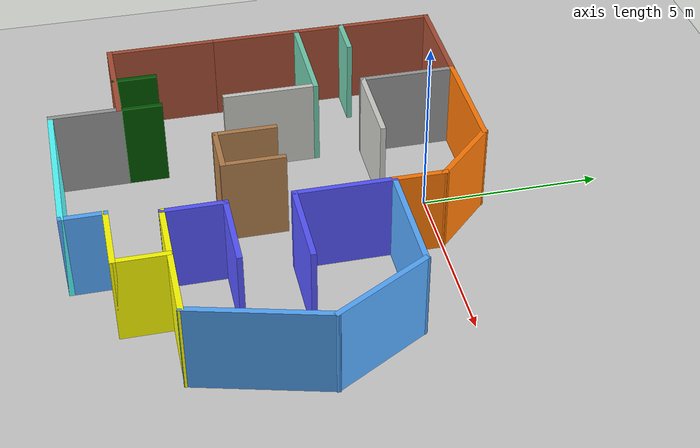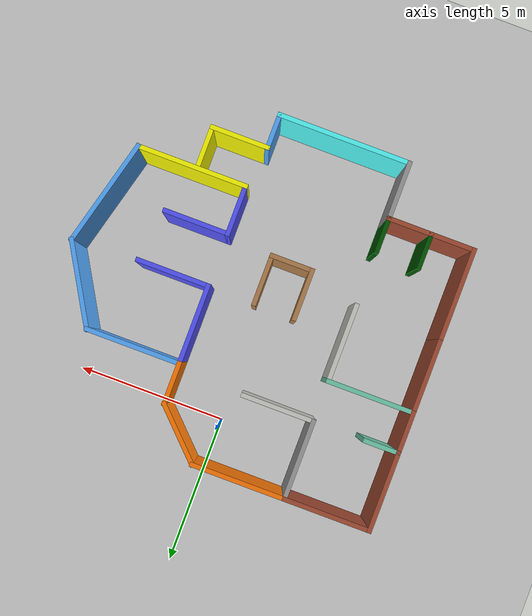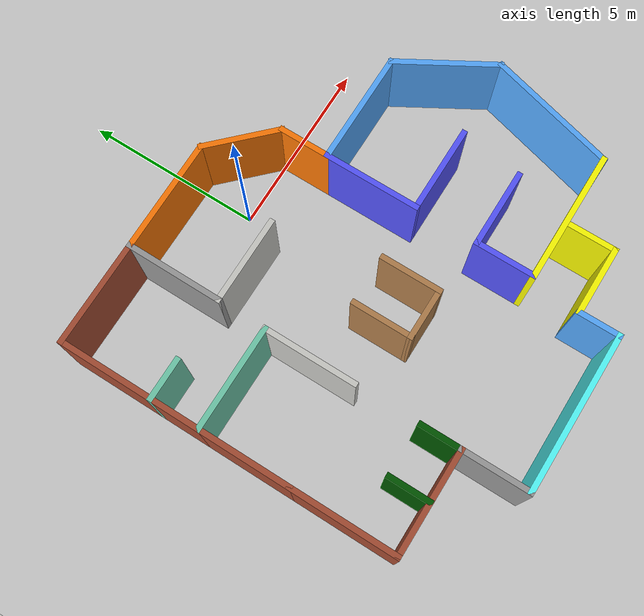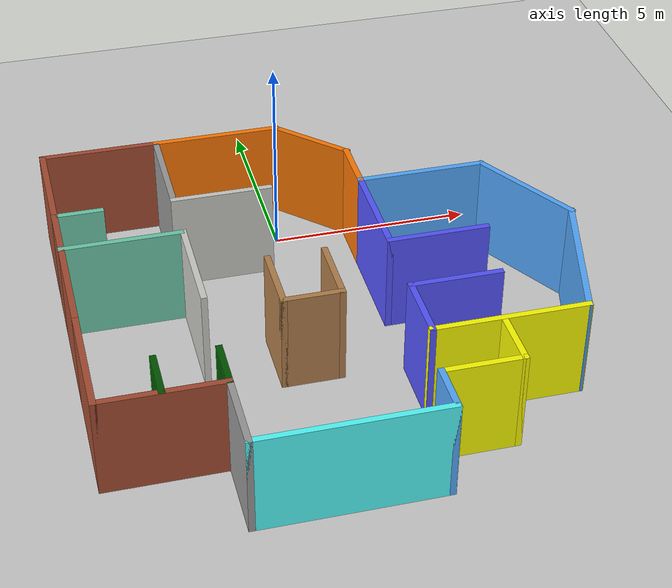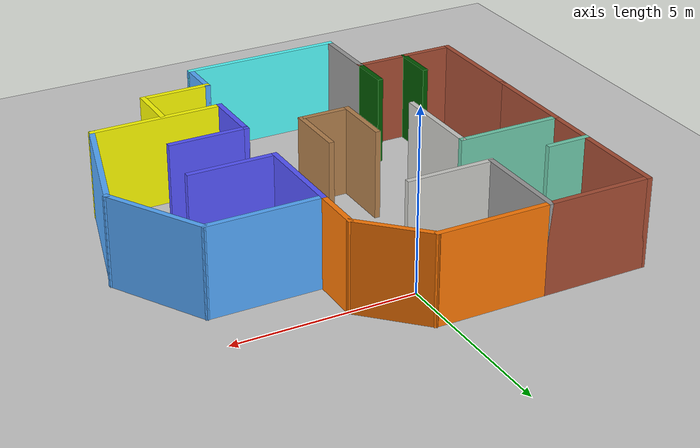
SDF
<sdf version="1.6">
 <world name="default">
  <light name="sun" type="directional">
   <pose>0 0 10 0 -0 0</pose>
   <diffuse>0.8 0.8 0.8 1</diffuse>
   <specular>0.1 0.1 0.1 1</specular>
   <attenuation>
    <range>1000</range>
    <constant>0.9</constant>
    <linear>0.01</linear>
    <quadratic>0.001</quadratic>
   </attenuation>
   <direction>-0.5 0.5 -1</direction>
  </light>
  <model name="ground_plane">
   <static>1</static>
   <link name="link">
    <collision name="collision">
     <geometry><plane><normal>0 0 1</normal><size>100 100</size></plane></geometry>
     <surface><friction><ode><mu>100</mu><mu2>50</mu2></ode></friction></surface>
    </collision>
    <visual name="visual">
     <cast_shadows>0</cast_shadows>
     <geometry><plane><normal>0 0 1</normal><size>100 100</size></plane></geometry>
     <material>
      <script><uri>file://media/materials/scripts/gazebo.material</uri><name>Gazebo/Grey</name></script>
     </material>
    </visual>
   </link>
  </model>
  <gravity>0 0 -9.8</gravity>
  <magnetic_field>6e-06 2.3e-05 -4.2e-05</magnetic_field>
  <atmosphere type="adiabatic"/>
  <physics name="default_physics" default="0" type="ode">
   <max_step_size>0.001</max_step_size>
   <real_time_factor>1</real_time_factor>
   <real_time_update_rate>1000</real_time_update_rate>
  </physics>
  <scene><ambient>0.4 0.4 0.4 1</ambient><background>0.7 0.7 0.7 1</background><shadows>1</shadows></scene>
  <spherical_coordinates>
   <surface_model>EARTH_WGS84</surface_model>
   <latitude_deg>0</latitude_deg>
   <longitude_deg>0</longitude_deg>
   <elevation>0</elevation>
   <heading_deg>0</heading_deg>
  </spherical_coordinates>
  <model name="building4">
   <pose>0.392053 -4.12828 0 0 -0 0</pose>
   <link name="Wall_12">
    <collision name="Wall_12_Collision">
     <geometry><box><size>2.75 0.15 2.5</size></box></geometry>
     <pose>0 0 1.25 0 -0 0</pose>
    </collision>
    <visual name="Wall_12_Visual">
     <pose>0 0 1.25 0 -0 0</pose>
     <geometry><box><size>2.75 0.15 2.5</size></box></geometry>
     <material>
      <script><uri>file://media/materials/scripts/gazebo.material</uri><name>Gazebo/Bricks</name></script>
      <ambient>1 1 1 1</ambient>
     </material>
    </visual>
    <pose>-5.99369 4.30947 0 0 -0 1.5708</pose>
   </link>
   <link name="Wall_13">
    <collision name="Wall_13_Collision">
     <geometry><box><size>3 0.15 2.5</size></box></geometry>
     <pose>0 0 1.25 0 -0 0</pose>
    </collision>
    <visual name="Wall_13_Visual">
     <pose>0 0 1.25 0 -0 0</pose>
     <geometry><box><size>3 0.15 2.5</size></box></geometry>
     <material>
      <script><uri>file://media/materials/scripts/gazebo.material</uri><name>Gazebo/Bricks</name></script>
      <ambient>1 1 1 1</ambient>
     </material>
    </visual>
    <pose>-4.56869 5.60947 0 0 -0 0</pose>
   </link>
   <link name="Wall_14">
    <collision name="Wall_14_Collision">
     <geometry><box><size>2.75 0.15 2.5</size></box></geometry>
     <pose>0 0 1.25 0 -0 0</pose>
    </collision>
    <visual name="Wall_14_Visual">
     <pose>0 0 1.25 0 -0 0</pose>
     <geometry><box><size>2.75 0.15 2.5</size></box></geometry>
     <material>
      <script><uri>file://media/materials/scripts/gazebo.material</uri><name>Gazebo/Grey</name></script>
      <ambient>1 1 1 1</ambient>
     </material>
    </visual>
    <pose>-3.14369 4.30947 0 0 0 -1.5708</pose>
   </link>
   <link name="Wall_16">
    <collision name="Wall_16_Collision">
     <geometry><box><size>2.5 0.15 2.5</size></box></geometry>
     <pose>0 0 1.25 0 -0 0</pose>
    </collision>
    <visual name="Wall_16_Visual">
     <pose>0 0 1.25 0 -0 0</pose>
     <geometry><box><size>2.5 0.15 2.5</size></box></geometry>
     <material>
      <script><uri>file://media/materials/scripts/gazebo.material</uri><name>Gazebo/CeilingTiled</name></script>
      <ambient>1 0 1 1</ambient>
     </material>
    </visual>
    <pose>-1.96869 3.00947 0 0 -0 0</pose>
   </link>
   <link name="Wall_18">
    <collision name="Wall_18_Collision">
     <geometry><box><size>3.25 0.15 2.5</size></box></geometry>
     <pose>0 0 1.25 0 -0 0</pose>
    </collision>
    <visual name="Wall_18_Visual">
     <pose>0 0 1.25 0 -0 0</pose>
     <geometry><box><size>3.25 0.15 2.5</size></box></geometry>
     <material>
      <script><uri>file://media/materials/scripts/gazebo.material</uri><name>Gazebo/Grey</name></script>
      <ambient>0.996078 0.47451 0.0196078 1</ambient>
     </material>
    </visual>
    <pose>-1.59369 5.60947 0 0 -0 0</pose>
   </link>
   <link name="Wall_19">
    <collision name="Wall_19_Collision">
     <geometry><box><size>2.25 0.15 2.5</size></box></geometry>
     <pose>0 0 1.25 0 -0 0</pose>
    </collision>
    <visual name="Wall_19_Visual">
     <pose>0 0 1.25 0 -0 0</pose>
     <geometry><box><size>2.25 0.15 2.5</size></box></geometry>
     <material>
      <script><uri>file://media/materials/scripts/gazebo.material</uri><name>Gazebo/Grey</name></script>
      <ambient>0.996078 0.47451 0.0196078 1</ambient>
     </material>
    </visual>
    <pose>0.698774 4.867 0 0 0 -0.785398</pose>
   </link>
   <link name="Wall_2">
    <collision name="Wall_2_Collision">
     <geometry><box><size>1.5 0.15 2.5</size></box></geometry>
     <pose>0 0 1.25 0 -0 0</pose>
    </collision>
    <visual name="Wall_2_Visual">
     <pose>0 0 1.25 0 -0 0</pose>
     <geometry><box><size>1.5 0.15 2.5</size></box></geometry>
     <material>
      <script><uri>file://media/materials/scripts/gazebo.material</uri><name>Gazebo/Bricks</name></script>
      <ambient>1 1 1 1</ambient>
     </material>
    </visual>
    <pose>-5.99369 2.33447 0 0 0 -1.5708</pose>
   </link>
   <link name="Wall_20">
    <collision name="Wall_20_Collision">
     <geometry><box><size>1.5 0.15 2.5</size></box></geometry>
     <pose>0 0 1.25 0 -0 0</pose>
    </collision>
    <visual name="Wall_20_Visual">
     <pose>0 0 1.25 0 -0 0</pose>
     <geometry><box><size>1.5 0.15 2.5</size></box></geometry>
     <material>
      <script><uri>file://media/materials/scripts/gazebo.material</uri><name>Gazebo/Grey</name></script>
      <ambient>0.996078 0.47451 0.0196078 1</ambient>
     </material>
    </visual>
    <pose>1.44124 3.44954 0 0 0 -1.5708</pose>
   </link>
   <link name="Wall_21">
    <collision name="Wall_21_Collision">
     <geometry><box><size>3.25 0.15 2.5</size></box></geometry>
     <pose>0 0 1.25 0 -0 0</pose>
    </collision>
    <visual name="Wall_21_Visual">
     <pose>0 0 1.25 0 -0 0</pose>
     <geometry><box><size>3.25 0.15 2.5</size></box></geometry>
     <material>
      <script><uri>file://media/materials/scripts/gazebo.material</uri><name>Gazebo/Grey</name></script>
      <ambient>0.333333 0.666667 1 1</ambient>
     </material>
    </visual>
    <pose>2.99124 2.77454 0 0 -0 0</pose>
   </link>
   <link name="Wall_22">
    <collision name="Wall_22_Collision">
     <geometry><box><size>3 0.15 2.5</size></box></geometry>
     <pose>0 0 1.25 0 -0 0</pose>
    </collision>
    <visual name="Wall_22_Visual">
     <pose>0 0 1.25 0 -0 0</pose>
     <geometry><box><size>3 0.15 2.5</size></box></geometry>
     <material>
      <script><uri>file://media/materials/scripts/gazebo.material</uri><name>Gazebo/Grey</name></script>
      <ambient>0.333333 0.666667 1 1</ambient>
     </material>
    </visual>
    <pose>5.25374 1.54046 0 0 0 -1.0472</pose>
   </link>
   <link name="Wall_23">
    <collision name="Wall_23_Collision">
     <geometry><box><size>3.75 0.15 2.5</size></box></geometry>
     <pose>0 0 1.25 0 -0 0</pose>
    </collision>
    <visual name="Wall_23_Visual">
     <pose>0 0 1.25 0 -0 0</pose>
     <geometry><box><size>3.75 0.15 2.5</size></box></geometry>
     <material>
      <script><uri>file://media/materials/scripts/gazebo.material</uri><name>Gazebo/Grey</name></script>
      <ambient>0.333333 0.666667 1 1</ambient>
     </material>
    </visual>
    <pose>5.50036 -1.4323 0 0 0 -1.8326</pose>
   </link>
   <link name="Wall_25">
    <collision name="Wall_25_Collision">
     <geometry><box><size>3.07036 0.15 2.5</size></box></geometry>
     <pose>0 0 1.25 0 -0 0</pose>
    </collision>
    <visual name="Wall_25_Visual">
     <pose>0 0 1.25 0 -0 0</pose>
     <geometry><box><size>3.07036 0.15 2.5</size></box></geometry>
     <material>
      <script><uri>file://media/materials/scripts/gazebo.material</uri><name>Gazebo/Bricks</name></script>
      <ambient>1 1 1 1</ambient>
     </material>
    </visual>
    <pose>-5.99369 -2.33035 0 0 0 -1.5708</pose>
   </link>
   <link name="Wall_26">
    <collision name="Wall_26_Collision">
     <geometry><box><size>3 0.15 2.5</size></box></geometry>
     <pose>0 0 1.25 0 -0 0</pose>
    </collision>
    <visual name="Wall_26_Visual">
     <pose>0 0 1.25 0 -0 0</pose>
     <geometry><box><size>3 0.15 2.5</size></box></geometry>
     <material>
      <script><uri>file://media/materials/scripts/gazebo.material</uri><name>Gazebo/Bricks</name></script>
      <ambient>1 1 1 1</ambient>
     </material>
    </visual>
    <pose>-4.56869 -3.79053 0 0 -0 0</pose>
   </link>
   <link name="Wall_27">
    <collision name="Wall_27_Collision">
     <geometry><box><size>1.25 0.15 2.5</size></box></geometry>
     <pose>0 0 1.25 0 -0 0</pose>
    </collision>
    <visual name="Wall_27_Visual">
     <pose>0 0 1.25 0 -0 0</pose>
     <geometry><box><size>1.25 0.15 2.5</size></box></geometry>
     <material>
      <script><uri>file://media/materials/scripts/gazebo.material</uri><name>Gazebo/Grey</name></script>
      <ambient>0 0.333333 0 1</ambient>
     </material>
    </visual>
    <pose>-3.14369 -3.24053 0 0 -0 1.5708</pose>
   </link>
   <link name="Wall_29">
    <collision name="Wall_29_Collision">
     <geometry><box><size>2.75 0.15 2.5</size></box></geometry>
     <pose>0 0 1.25 0 -0 0</pose>
    </collision>
    <visual name="Wall_29_Visual">
     <pose>0 0 1.25 0 -0 0</pose>
     <geometry><box><size>2.75 0.15 2.5</size></box></geometry>
     <material>
      <script><uri>file://media/materials/scripts/gazebo.material</uri><name>Gazebo/Grey</name></script>
      <ambient>0.333333 0.333333 1 1</ambient>
     </material>
    </visual>
    <pose>1.44124 1.47454 0 0 0 -1.5708</pose>
   </link>
   <link name="Wall_30">
    <collision name="Wall_30_Collision">
     <geometry><box><size>2.5 0.15 2.5</size></box></geometry>
     <pose>0 0 1.25 0 -0 0</pose>
    </collision>
    <visual name="Wall_30_Visual">
     <pose>0 0 1.25 0 -0 0</pose>
     <geometry><box><size>2.5 0.15 2.5</size></box></geometry>
     <material>
      <script><uri>file://media/materials/scripts/gazebo.material</uri><name>Gazebo/Grey</name></script>
      <ambient>0.333333 0.333333 1 1</ambient>
     </material>
    </visual>
    <pose>2.61624 0.174543 0 0 -0 0</pose>
   </link>
   <link name="Wall_32">
    <collision name="Wall_32_Collision">
     <geometry><box><size>3.75 0.15 2.5</size></box></geometry>
     <pose>0 0 1.25 0 -0 0</pose>
    </collision>
    <visual name="Wall_32_Visual">
     <pose>0 0 1.25 0 -0 0</pose>
     <geometry><box><size>3.75 0.15 2.5</size></box></geometry>
     <material>
      <script><uri>file://media/materials/scripts/gazebo.material</uri><name>Gazebo/Grey</name></script>
      <ambient>1 1 0 1</ambient>
     </material>
    </visual>
    <pose>3.23449 -3.17096 0 0 -0 3.14159</pose>
   </link>
   <link name="Wall_33">
    <collision name="Wall_33_Collision">
     <geometry><box><size>1.75 0.15 2.5</size></box></geometry>
     <pose>0 0 1.25 0 -0 0</pose>
    </collision>
    <visual name="Wall_33_Visual">
     <pose>0 0 1.25 0 -0 0</pose>
     <geometry><box><size>1.75 0.15 2.5</size></box></geometry>
     <material>
      <script><uri>file://media/materials/scripts/gazebo.material</uri><name>Gazebo/Grey</name></script>
      <ambient>0.333333 0.333333 1 1</ambient>
     </material>
    </visual>
    <pose>1.43449 -2.37096 0 0 -0 1.5708</pose>
   </link>
   <link name="Wall_34">
    <collision name="Wall_34_Collision">
     <geometry><box><size>2.25 0.15 2.5</size></box></geometry>
     <pose>0 0 1.25 0 -0 0</pose>
    </collision>
    <visual name="Wall_34_Visual">
     <pose>0 0 1.25 0 -0 0</pose>
     <geometry><box><size>2.25 0.15 2.5</size></box></geometry>
     <material>
      <script><uri>file://media/materials/scripts/gazebo.material</uri><name>Gazebo/Grey</name></script>
      <ambient>0.333333 0.333333 1 1</ambient>
     </material>
    </visual>
    <pose>2.48449 -1.57096 0 0 -0 0</pose>
   </link>
   <link name="Wall_36">
    <collision name="Wall_36_Collision">
     <geometry><box><size>2 0.15 2.5</size></box></geometry>
     <pose>0 0 1.25 0 -0 0</pose>
    </collision>
    <visual name="Wall_36_Visual">
     <pose>0 0 1.25 0 -0 0</pose>
     <geometry><box><size>2 0.15 2.5</size></box></geometry>
     <material>
      <script><uri>file://media/materials/scripts/gazebo.material</uri><name>Gazebo/Grey</name></script>
      <ambient>1 1 1 1</ambient>
     </material>
    </visual>
    <pose>-3.14369 -4.71553 0 0 0 -1.5708</pose>
   </link>
   <link name="Wall_37">
    <collision name="Wall_37_Collision">
     <geometry><box><size>4.5 0.15 2.5</size></box></geometry>
     <pose>0 0 1.25 0 -0 0</pose>
    </collision>
    <visual name="Wall_37_Visual">
     <pose>0 0 1.25 0 -0 0</pose>
     <geometry><box><size>4.5 0.15 2.5</size></box></geometry>
     <material>
      <script><uri>file://media/materials/scripts/gazebo.material</uri><name>Gazebo/Grey</name></script>
      <ambient>0.333333 1 1 1</ambient>
     </material>
    </visual>
    <pose>-0.968688 -5.64053 0 0 -0 0</pose>
   </link>
   <link name="Wall_38">
    <collision name="Wall_38_Collision">
     <geometry><box><size>1.25 0.15 2.5</size></box></geometry>
     <pose>0 0 1.25 0 -0 0</pose>
    </collision>
    <visual name="Wall_38_Visual">
     <pose>0 0 1.25 0 -0 0</pose>
     <geometry><box><size>1.25 0.15 2.5</size></box></geometry>
     <material>
      <script><uri>file://media/materials/scripts/gazebo.material</uri><name>Gazebo/Grey</name></script>
      <ambient>0.333333 0.666667 1 1</ambient>
     </material>
    </visual>
    <pose>1.20631 -5.09053 0 0 -0 1.5708</pose>
   </link>
   <link name="Wall_39">
    <collision name="Wall_39_Collision">
     <geometry><box><size>2 0.15 2.5</size></box></geometry>
     <pose>0 0 1.25 0 -0 0</pose>
    </collision>
    <visual name="Wall_39_Visual">
     <pose>0 0 1.25 0 -0 0</pose>
     <geometry><box><size>2 0.15 2.5</size></box></geometry>
     <material>
      <script><uri>file://media/materials/scripts/gazebo.material</uri><name>Gazebo/Grey</name></script>
      <ambient>1 1 0 1</ambient>
     </material>
    </visual>
    <pose>2.13131 -4.54053 0 0 -0 0</pose>
   </link>
   <link name="Wall_40">
    <collision name="Wall_40_Collision">
     <geometry><box><size>1.5 0.15 2.5</size></box></geometry>
     <pose>0 0 1.25 0 -0 0</pose>
    </collision>
    <visual name="Wall_40_Visual">
     <pose>0 0 1.25 0 -0 0</pose>
     <geometry><box><size>1.5 0.15 2.5</size></box></geometry>
     <material>
      <script><uri>file://media/materials/scripts/gazebo.material</uri><name>Gazebo/Grey</name></script>
      <ambient>1 1 0 1</ambient>
     </material>
    </visual>
    <pose>3.05631 -3.86553 0 0 -0 1.5708</pose>
   </link>
   <link name="Wall_42">
    <collision name="Wall_42_Collision">
     <geometry><box><size>1.75 0.15 2.5</size></box></geometry>
     <pose>0 0 1.25 0 -0 0</pose>
    </collision>
    <visual name="Wall_42_Visual">
     <pose>0 0 1.25 0 -0 0</pose>
     <geometry><box><size>1.75 0.15 2.5</size></box></geometry>
     <material>
      <script><uri>file://media/materials/scripts/gazebo.material</uri><name>Gazebo/Wood</name></script>
      <ambient>1 1 1 1</ambient>
     </material>
    </visual>
    <pose>-1.45887 -0.614271 0 0 0 -1.5708</pose>
   </link>
   <link name="Wall_43">
    <collision name="Wall_43_Collision">
     <geometry><box><size>1.5 0.15 2.5</size></box></geometry>
     <pose>0 0 1.25 0 -0 0</pose>
    </collision>
    <visual name="Wall_43_Visual">
     <pose>0 0 1.25 0 -0 0</pose>
     <geometry><box><size>1.5 0.15 2.5</size></box></geometry>
     <material>
      <script><uri>file://media/materials/scripts/gazebo.material</uri><name>Gazebo/Wood</name></script>
      <ambient>1 1 1 1</ambient>
     </material>
    </visual>
    <pose>-0.783873 -1.41427 0 0 -0 0</pose>
   </link>
   <link name="Wall_44">
    <collision name="Wall_44_Collision">
     <geometry><box><size>1.75 0.15 2.5</size></box></geometry>
     <pose>0 0 1.25 0 -0 0</pose>
    </collision>
    <visual name="Wall_44_Visual">
     <pose>0 0 1.25 0 -0 0</pose>
     <geometry><box><size>1.75 0.15 2.5</size></box></geometry>
     <material>
      <script><uri>file://media/materials/scripts/gazebo.material</uri><name>Gazebo/Wood</name></script>
      <ambient>1 1 1 1</ambient>
     </material>
    </visual>
    <pose>-0.108873 -0.614271 0 0 -0 1.5708</pose>
   </link>
   <link name="Wall_46">
    <collision name="Wall_46_Collision">
     <geometry><box><size>1.25 0.15 2.5</size></box></geometry>
     <pose>0 0 1.25 0 -0 0</pose>
    </collision>
    <visual name="Wall_46_Visual">
     <pose>0 0 1.25 0 -0 0</pose>
     <geometry><box><size>1.25 0.15 2.5</size></box></geometry>
     <material>
      <script><uri>file://media/materials/scripts/gazebo.material</uri><name>Gazebo/Grey</name></script>
      <ambient>0.435294 0.796078 0.67451 1</ambient>
     </material>
    </visual>
    <pose>-5.44369 3.00947 0 0 -0 0</pose>
   </link>
   <link name="Wall_48">
    <collision name="Wall_48_Collision">
     <geometry><box><size>3 0.15 2.5</size></box></geometry>
     <pose>0 0 1.25 0 -0 0</pose>
    </collision>
    <visual name="Wall_48_Visual">
     <pose>0 0 1.25 0 -0 0</pose>
     <geometry><box><size>3 0.15 2.5</size></box></geometry>
     <material>
      <script><uri>file://media/materials/scripts/gazebo.material</uri><name>Gazebo/Grey</name></script>
      <ambient>0.435294 0.796078 0.67451 1</ambient>
     </material>
    </visual>
    <pose>-4.56869 1.65947 0 0 -0 0</pose>
   </link>
   <link name="Wall_51">
    <collision name="Wall_51_Collision">
     <geometry><box><size>1.25 0.15 2.5</size></box></geometry>
     <pose>0 0 1.25 0 -0 0</pose>
    </collision>
    <visual name="Wall_51_Visual">
     <pose>0 0 1.25 0 -0 0</pose>
     <geometry><box><size>1.25 0.15 2.5</size></box></geometry>
     <material>
      <script><uri>file://media/materials/scripts/gazebo.material</uri><name>Gazebo/Grey</name></script>
      <ambient>0 0.333333 0 1</ambient>
     </material>
    </visual>
    <pose>-4.56492 -3.22968 0 0 -0 1.5708</pose>
   </link>
   <link name="Wall_6">
    <collision name="Wall_6_Collision">
     <geometry><box><size>2.67964 0.15 2.5</size></box></geometry>
     <pose>0 0 1.25 0 -0 0</pose>
    </collision>
    <visual name="Wall_6_Visual">
     <pose>0 0 1.25 0 -0 0</pose>
     <geometry><box><size>2.67964 0.15 2.5</size></box></geometry>
     <material>
      <script><uri>file://media/materials/scripts/gazebo.material</uri><name>Gazebo/Bricks</name></script>
      <ambient>1 1 1 1</ambient>
     </material>
    </visual>
    <pose>-5.99369 0.394646 0 0 0 -1.5708</pose>
   </link>
   <link name="Wall_8">
    <collision name="Wall_8_Collision">
     <geometry><box><size>2.67964 0.15 2.5</size></box></geometry>
     <pose>0 0 1.25 0 -0 0</pose>
    </collision>
    <visual name="Wall_8_Visual">
     <pose>0 0 1.25 0 -0 0</pose>
     <geometry><box><size>2.67964 0.15 2.5</size></box></geometry>
     <material>
      <script><uri>file://media/materials/scripts/gazebo.material</uri><name>Gazebo/CeilingTiled</name></script>
      <ambient>1 0 1 1</ambient>
     </material>
    </visual>
    <pose>-3.14369 0.394646 0 0 -0 1.5708</pose>
   </link>
   <static>1</static>
  </model>
 </world>
</sdf>
